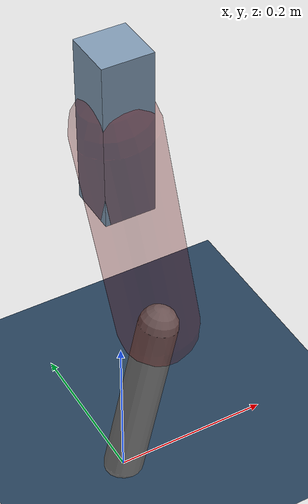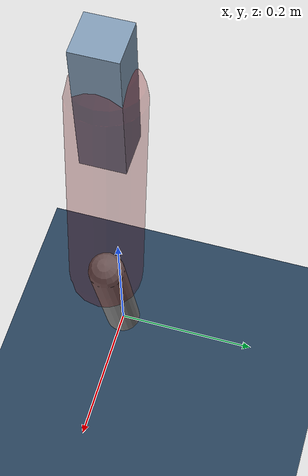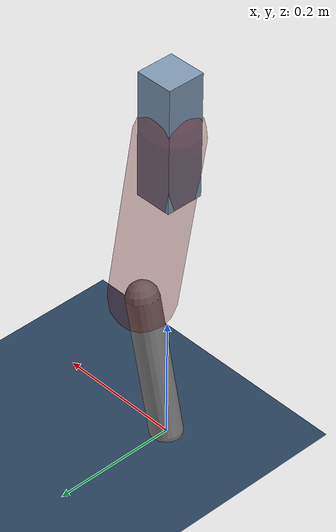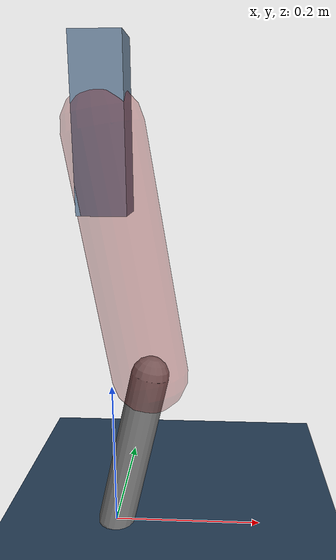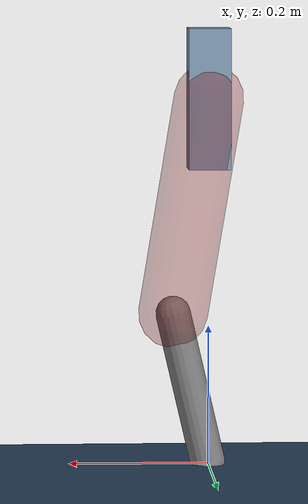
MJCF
<mujoco model="Hopper2D">
	<compiler inertiafromgeom="true" angle="radian" />
	<option timestep="0.001" integrator="implicit" cone="elliptic" solver="Newton" tolerance="1e-10" />

	<default>
		<geom contype="1" conaffinity="1" condim="3" friction="2 0.005 0.0001" solref="0.005 1" />
		<joint limited="true" damping="0.1" />
	</default>

	<asset>
		<texture name="skybox" type="skybox" builtin="gradient" rgb1=".4 .6 .8" rgb2="0 0 0" width="800" height="800" />
		<texture name="grid" type="2d" builtin="checker" rgb1=".1 .2 .3" rgb2=".2 .3 .4" width="300" height="300" mark="edge" markrgb=".2 .3 .4" />
		<material name="ground" texture="grid" texrepeat="1 1" texuniform="true" reflectance="0.1" />
		<material name="leg" rgba="0.5 0.6 0.7 1" />
	</asset>

	<worldbody>

		<geom name="floor" type="plane" size="5 5 0.25" material="ground" />

		<light directional="false" diffuse="0.8 0.8 0.8" specular="0.3 0.3 0.3" pos="0 0 2" dir="0 0 -1" />
		<light mode="targetbodycom" target="base" directional="false" diffuse="0.8 0.8 0.8" specular="0.3 0.3 0.3" pos="0 0 2" dir="0 0 -1" />

		<camera name="fixed" pos="0 -2 1" xyaxes="1 0 0 0 0 1" />
		<camera name="tracking" mode="trackcom" pos="0 -3 1" />

		<body name="root" pos="0 0 0.5271562944712966">
			<joint name="slide_x" type="slide" axis="1 0 0" range="-100 100" />
			<joint name="slide_z" type="slide" axis="0 0 1" range="0 10" />

			<body name="base" pos="0 0 0">
				<geom name="torso" type="box" size="0.03 0.03 0.1" mass="3.459" material="leg" />

				<body name="link1" pos="0 0 0" euler="0 1.4074255820376205 0">
					<joint type="hinge" axis="0 -1 0" pos="0 0 0" name="hinge1" limited="true" range="-3.14 3.14" stiffness="0" damping="0.1" />
					<geom name="thigh" type="capsule" fromto="0 0 0 0.3126787218409468 0 0" size="0.05" rgba="0.5 0 0 0.3" mass="1.023200421154651" />

					<body name="link2" pos="0.3126787218409468 0 0" euler="0 0.39190592659841134 0">
						<joint type="hinge" axis="0 -1 0" pos="0 0 0" name="hinge2" limited="true" range="-3.14 3.14" stiffness="0" damping="0.1" />
						<geom name="shank" type="capsule" fromto="0 0 0 0.2244775726303499 0 0" size="0.025" mass="0.4213820581042799" />

					</body>
				</body>
			</body>
		</body>
	</worldbody>

	<actuator>
		<motor name="torque1" joint="hinge1" ctrlrange="-159.9840284984336 159.9840284984336" ctrllimited="true" gear="1" />
		<motor name="torque2" joint="hinge2" ctrlrange="-131.85636749067567 131.85636749067567" ctrllimited="true" gear="1" />
	</actuator>
</mujoco>
